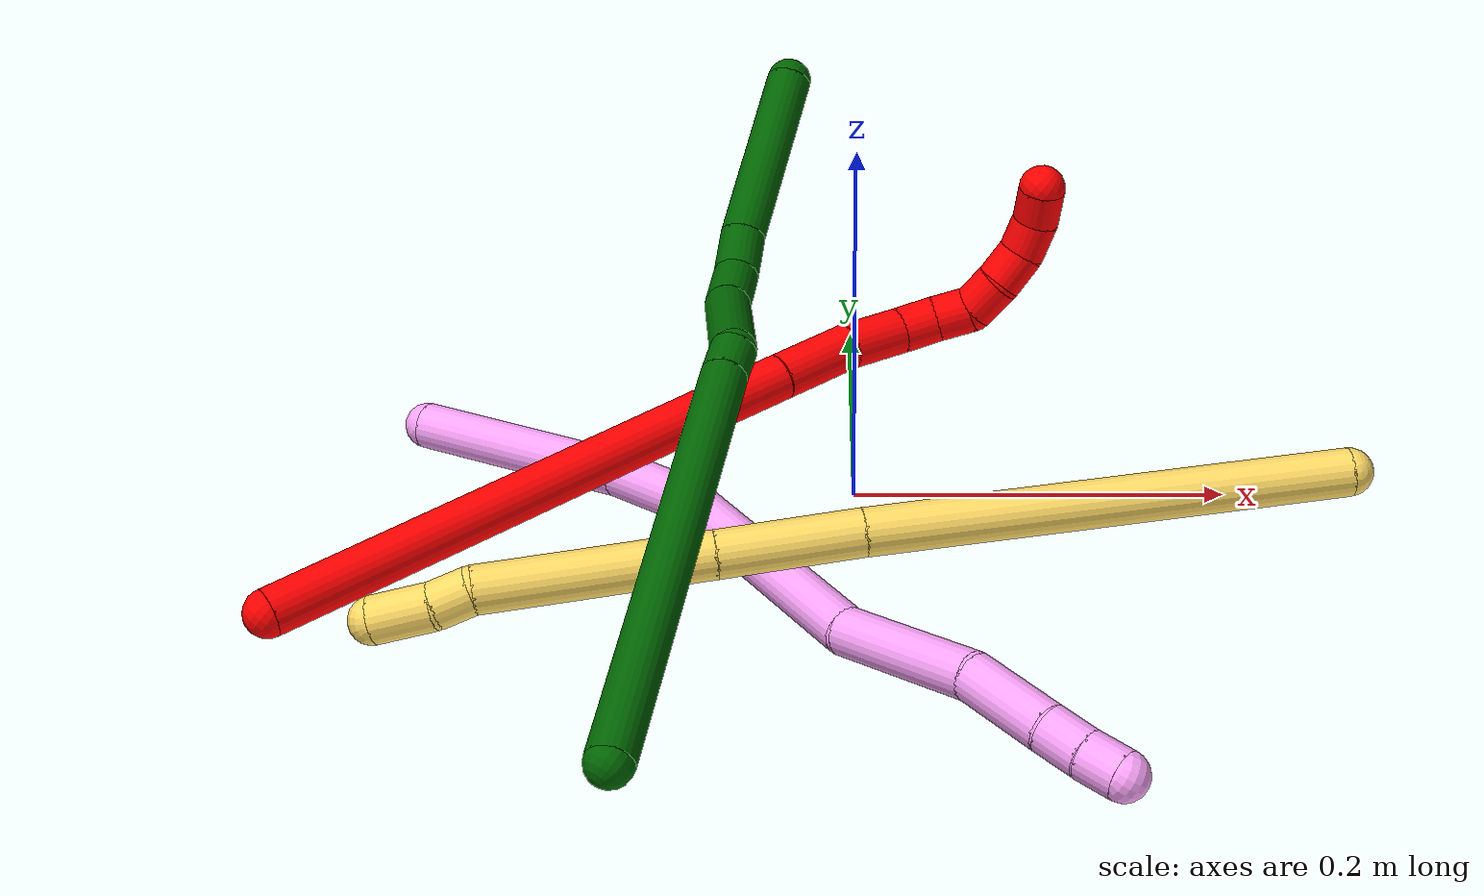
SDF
<sdf version="1.7">
 <world name="default">
  <model name="photoneo_s_sensor">
   <static>1</static>
   <pose>0 0 2 1.57079 1.57079 3.14159</pose>
   <link name="link">
    <inertial><mass>0.1</mass></inertial>
    <sensor name="sensor" type="depth">
     <update_rate>30</update_rate>
     <camera>
      <horizontal_fov>1.22</horizontal_fov>
      <image><width>1920</width><height>1200</height><format>B8G8R8</format></image>
      <clip><near>0.1</near><far>4</far></clip>
      <depth_camera><output>points</output></depth_camera>
     </camera>
     <plugin name="camera_plugin" filename="libgazebo_ros_depth_camera.so">
      <baseline>0.2</baseline>
      <alwaysOn>1</alwaysOn>
      <updateRate>0.0</updateRate>
      <cameraName>camera_ir</cameraName>
      <imageTopicName>/camera/color/image_raw</imageTopicName>
      <cameraInfoTopicName>/camera/color/camera_info</cameraInfoTopicName>
      <depthImageTopicName>/camera/depth/image_raw</depthImageTopicName>
      <depthImageCameraInfoTopicName>/camera/depth/camera_info</depthImageCameraInfoTopicName>
      <pointCloudTopicName>/camera/depth/points</pointCloudTopicName>
      <frameName>fr_optical</frameName>
      <pointCloudCutoff>0.1</pointCloudCutoff>
      <pointCloudCutoffMax>2.0</pointCloudCutoffMax>
      <distortionK1>0</distortionK1>
      <distortionK2>0</distortionK2>
      <distortionK3>0</distortionK3>
      <distortionT1>0</distortionT1>
      <distortionT2>0</distortionT2>
      <CxPrime>0</CxPrime>
      <Cx>0</Cx>
      <Cy>0</Cy>
      <focalLength>0</focalLength>
      <hackBaseline>0</hackBaseline>
     </plugin>
    </sensor>
   </link>
  </model>
  <model name="bin">
   <static>1</static>
   <link name="bottom">
    <collision name="collision-bottom">
     <pose>0 0 -0.01 0 -0 0</pose>
     <geometry><box><size>0.8 0.6 0.02</size></box></geometry>
     <surface>
      <friction><ode><mu>100</mu><mu2>100</mu2></ode></friction>
      <contact><collide_bitmask>65535</collide_bitmask></contact>
     </surface>
    </collision>
   </link>
   <link name="west_wall">
    <collision name="collision-west_wall">
     <pose>-0.41 0 0.1 0 -0 0</pose>
     <geometry><box><size>0.02 0.6 0.2</size></box></geometry>
     <surface>
      <friction><ode><mu>100</mu><mu2>100</mu2></ode></friction>
      <contact><collide_bitmask>65535</collide_bitmask></contact>
     </surface>
    </collision>
   </link>
   <link name="east_wall">
    <collision name="collision-east_wall">
     <pose>0.41 0 0.1 0 -0 0</pose>
     <geometry><box><size>0.02 0.6 0.2</size></box></geometry>
     <surface>
      <friction><ode><mu>100</mu><mu2>100</mu2></ode></friction>
      <contact><collide_bitmask>65535</collide_bitmask></contact>
     </surface>
    </collision>
   </link>
   <link name="south_wall">
    <collision name="collision-south_wall">
     <pose>0 -0.31 0.1 0 -0 0</pose>
     <geometry><box><size>0.8 0.02 0.2</size></box></geometry>
     <surface>
      <friction><ode><mu>100</mu><mu2>100</mu2></ode></friction>
      <contact><collide_bitmask>65535</collide_bitmask></contact>
     </surface>
    </collision>
   </link>
   <link name="north_wall">
    <collision name="collision-north_wall">
     <pose>0 0.31 0.1 0 -0 0</pose>
     <geometry><box><size>0.8 0.02 0.2</size></box></geometry>
     <surface>
      <friction><ode><mu>100</mu><mu2>100</mu2></ode></friction>
      <contact><collide_bitmask>65535</collide_bitmask></contact>
     </surface>
    </collision>
   </link>
  </model>
  <model name="2">
   <static>0</static>
   <link name="2">
    <collision name="collision-cylinder-e_1_1_4">
     <pose>0.089248 0.001063 0.08856 -0.012002 0.789234 -0.004999</pose>
     <geometry><cylinder><radius>0.0125</radius><length>0.251469</length></cylinder></geometry>
     <surface>
      <friction><ode><mu>1.16</mu><mu2>1.16</mu2><slip1>0</slip1><slip2>0</slip2></ode></friction>
      <contact><ode><kp>1e+06</kp><kd>1</kd><max_vel>0</max_vel><min_depth>0.001</min_depth></ode></contact>
     </surface>
    </collision>
    <visual name="visual-cylinder-e_1_1_4">
     <pose>0.089248 0.001063 0.08856 -0.012002 0.789234 -0.004999</pose>
     <geometry><cylinder><radius>0.0125</radius><length>0.251469</length></cylinder></geometry>
     <material><ambient>1 0 0 1</ambient></material>
    </visual>
    <collision name="collision-cylinder-e_2_4_5">
     <pose>0.195399 0.002199 0.193785 -0.004354 0.792471 -0.001822</pose>
     <geometry><cylinder><radius>0.0125</radius><length>0.047474</length></cylinder></geometry>
     <surface>
      <friction><ode><mu>1.16</mu><mu2>1.16</mu2><slip1>0</slip1><slip2>0</slip2></ode></friction>
      <contact><ode><kp>1e+06</kp><kd>1</kd><max_vel>0</max_vel><min_depth>0.001</min_depth></ode></contact>
     </surface>
    </collision>
    <visual name="visual-cylinder-e_2_4_5">
     <pose>0.195399 0.002199 0.193785 -0.004354 0.792471 -0.001822</pose>
     <geometry><cylinder><radius>0.0125</radius><length>0.047474</length></cylinder></geometry>
     <material><ambient>1 0 0 1</ambient></material>
    </visual>
    <collision name="collision-cylinder-e_3_5_6">
     <pose>0.228975 0.002977 0.225557 -0.046688 0.834079 -0.020687</pose>
     <geometry><cylinder><radius>0.0125</radius><length>0.045021</length></cylinder></geometry>
     <surface>
      <friction><ode><mu>1.16</mu><mu2>1.16</mu2><slip1>0</slip1><slip2>0</slip2></ode></friction>
      <contact><ode><kp>1e+06</kp><kd>1</kd><max_vel>0</max_vel><min_depth>0.001</min_depth></ode></contact>
     </surface>
    </collision>
    <visual name="visual-cylinder-e_3_5_6">
     <pose>0.228975 0.002977 0.225557 -0.046688 0.834079 -0.020687</pose>
     <geometry><cylinder><radius>0.0125</radius><length>0.045021</length></cylinder></geometry>
     <material><ambient>1 0 0 1</ambient></material>
    </visual>
    <collision name="collision-cylinder-e_4_6_7">
     <pose>0.25796 0.002283 0.251131 0.132955 0.861867 0.061197</pose>
     <geometry><cylinder><radius>0.0125</radius><length>0.032441</length></cylinder></geometry>
     <surface>
      <friction><ode><mu>1.16</mu><mu2>1.16</mu2><slip1>0</slip1><slip2>0</slip2></ode></friction>
      <contact><ode><kp>1e+06</kp><kd>1</kd><max_vel>0</max_vel><min_depth>0.001</min_depth></ode></contact>
     </surface>
    </collision>
    <visual name="visual-cylinder-e_4_6_7">
     <pose>0.25796 0.002283 0.251131 0.132955 0.861867 0.061197</pose>
     <geometry><cylinder><radius>0.0125</radius><length>0.032441</length></cylinder></geometry>
     <material><ambient>1 0 0 1</ambient></material>
    </visual>
    <collision name="collision-cylinder-e_5_7_8">
     <pose>0.276851 -0.001586 0.270051 0.284239 0.641591 0.095014</pose>
     <geometry><cylinder><radius>0.0125</radius><length>0.021984</length></cylinder></geometry>
     <surface>
      <friction><ode><mu>1.16</mu><mu2>1.16</mu2><slip1>0</slip1><slip2>0</slip2></ode></friction>
      <contact><ode><kp>1e+06</kp><kd>1</kd><max_vel>0</max_vel><min_depth>0.001</min_depth></ode></contact>
     </surface>
    </collision>
    <visual name="visual-cylinder-e_5_7_8">
     <pose>0.276851 -0.001586 0.270051 0.284239 0.641591 0.095014</pose>
     <geometry><cylinder><radius>0.0125</radius><length>0.021984</length></cylinder></geometry>
     <material><ambient>1 0 0 1</ambient></material>
    </visual>
    <collision name="collision-cylinder-e_6_8_9">
     <pose>0.28601 -0.009023 0.287214 0.518264 0.251939 0.067117</pose>
     <geometry><cylinder><radius>0.0125</radius><length>0.020709</length></cylinder></geometry>
     <surface>
      <friction><ode><mu>1.16</mu><mu2>1.16</mu2><slip1>0</slip1><slip2>0</slip2></ode></friction>
      <contact><ode><kp>1e+06</kp><kd>1</kd><max_vel>0</max_vel><min_depth>0.001</min_depth></ode></contact>
     </surface>
    </collision>
    <visual name="visual-cylinder-e_6_8_9">
     <pose>0.28601 -0.009023 0.287214 0.518264 0.251939 0.067117</pose>
     <geometry><cylinder><radius>0.0125</radius><length>0.020709</length></cylinder></geometry>
     <material><ambient>1 0 0 1</ambient></material>
    </visual>
    <collision name="collision-cylinder-e_7_9_10">
     <pose>0.28841 -0.014799 0.306165 0.078742 -0.017656 -0.000696</pose>
     <geometry><cylinder><radius>0.0125</radius><length>0.020546</length></cylinder></geometry>
     <surface>
      <friction><ode><mu>1.16</mu><mu2>1.16</mu2><slip1>0</slip1><slip2>0</slip2></ode></friction>
      <contact><ode><kp>1e+06</kp><kd>1</kd><max_vel>0</max_vel><min_depth>0.001</min_depth></ode></contact>
     </surface>
    </collision>
    <visual name="visual-cylinder-e_7_9_10">
     <pose>0.28841 -0.014799 0.306165 0.078742 -0.017656 -0.000696</pose>
     <geometry><cylinder><radius>0.0125</radius><length>0.020546</length></cylinder></geometry>
     <material><ambient>1 0 0 1</ambient></material>
    </visual>
    <collision name="collision-cylinder-e_8_10_11">
     <pose>0.288994 -0.014454 0.326464 -0.11409 0.075414 -0.004309</pose>
     <geometry><cylinder><radius>0.0125</radius><length>0.020308</length></cylinder></geometry>
     <surface>
      <friction><ode><mu>1.16</mu><mu2>1.16</mu2><slip1>0</slip1><slip2>0</slip2></ode></friction>
      <contact><ode><kp>1e+06</kp><kd>1</kd><max_vel>0</max_vel><min_depth>0.001</min_depth></ode></contact>
     </surface>
    </collision>
    <visual name="visual-cylinder-e_8_10_11">
     <pose>0.288994 -0.014454 0.326464 -0.11409 0.075414 -0.004309</pose>
     <geometry><cylinder><radius>0.0125</radius><length>0.020308</length></cylinder></geometry>
     <material><ambient>1 0 0 1</ambient></material>
    </visual>
    <collision name="collision-cylinder-e_9_11_12">
     <pose>0.287087 -0.01154 0.346009 -0.18362 -0.270192 0.025027</pose>
     <geometry><cylinder><radius>0.0125</radius><length>0.020023</length></cylinder></geometry>
     <surface>
      <friction><ode><mu>1.16</mu><mu2>1.16</mu2><slip1>0</slip1><slip2>0</slip2></ode></friction>
      <contact><ode><kp>1e+06</kp><kd>1</kd><max_vel>0</max_vel><min_depth>0.001</min_depth></ode></contact>
     </surface>
    </collision>
    <visual name="visual-cylinder-e_9_11_12">
     <pose>0.287087 -0.01154 0.346009 -0.18362 -0.270192 0.025027</pose>
     <geometry><cylinder><radius>0.0125</radius><length>0.020023</length></cylinder></geometry>
     <material><ambient>1 0 0 1</ambient></material>
    </visual>
    <collision name="collision-cylinder-e_10_12_2">
     <pose>0.278766 -0.008208 0.363612 -0.191108 -0.599366 0.059213</pose>
     <geometry><cylinder><radius>0.0125</radius><length>0.020025</length></cylinder></geometry>
     <surface>
      <friction><ode><mu>1.16</mu><mu2>1.16</mu2><slip1>0</slip1><slip2>0</slip2></ode></friction>
      <contact><ode><kp>1e+06</kp><kd>1</kd><max_vel>0</max_vel><min_depth>0.001</min_depth></ode></contact>
     </surface>
    </collision>
    <visual name="visual-cylinder-e_10_12_2">
     <pose>0.278766 -0.008208 0.363612 -0.191108 -0.599366 0.059213</pose>
     <geometry><cylinder><radius>0.0125</radius><length>0.020025</length></cylinder></geometry>
     <material><ambient>1 0 0 1</ambient></material>
    </visual>
    <collision name="collision-sphere-2">
     <pose>0.273118 -0.006637 0.371729 0 -0 0</pose>
     <geometry><sphere><radius>0.0125</radius></sphere></geometry>
     <surface>
      <friction><ode><mu>1.16</mu><mu2>1.16</mu2><slip1>0</slip1><slip2>0</slip2></ode></friction>
      <contact><ode><kp>1e+06</kp><kd>1</kd><max_vel>0</max_vel><min_depth>0.001</min_depth></ode></contact>
     </surface>
    </collision>
    <visual name="visual-sphere-2">
     <pose>0.273118 -0.006637 0.371729 0 -0 0</pose>
     <geometry><sphere><radius>0.0125</radius></sphere></geometry>
     <material><ambient>1 0 0 1</ambient></material>
    </visual>
    <collision name="collision-sphere-12">
     <pose>0.284414 -0.009778 0.355495 0 -0 0</pose>
     <geometry><sphere><radius>0.0125</radius></sphere></geometry>
     <surface>
      <friction><ode><mu>1.16</mu><mu2>1.16</mu2><slip1>0</slip1><slip2>0</slip2></ode></friction>
      <contact><ode><kp>1e+06</kp><kd>1</kd><max_vel>0</max_vel><min_depth>0.001</min_depth></ode></contact>
     </surface>
    </collision>
    <visual name="visual-sphere-12">
     <pose>0.284414 -0.009778 0.355495 0 -0 0</pose>
     <geometry><sphere><radius>0.0125</radius></sphere></geometry>
     <material><ambient>1 0 0 1</ambient></material>
    </visual>
    <collision name="collision-sphere-11">
     <pose>0.289759 -0.013301 0.336523 0 -0 0</pose>
     <geometry><sphere><radius>0.0125</radius></sphere></geometry>
     <surface>
      <friction><ode><mu>1.16</mu><mu2>1.16</mu2><slip1>0</slip1><slip2>0</slip2></ode></friction>
      <contact><ode><kp>1e+06</kp><kd>1</kd><max_vel>0</max_vel><min_depth>0.001</min_depth></ode></contact>
     </surface>
    </collision>
    <visual name="visual-sphere-11">
     <pose>0.289759 -0.013301 0.336523 0 -0 0</pose>
     <geometry><sphere><radius>0.0125</radius></sphere></geometry>
     <material><ambient>1 0 0 1</ambient></material>
    </visual>
    <collision name="collision-sphere-10">
     <pose>0.288229 -0.015607 0.316404 0 -0 0</pose>
     <geometry><sphere><radius>0.0125</radius></sphere></geometry>
     <surface>
      <friction><ode><mu>1.16</mu><mu2>1.16</mu2><slip1>0</slip1><slip2>0</slip2></ode></friction>
      <contact><ode><kp>1e+06</kp><kd>1</kd><max_vel>0</max_vel><min_depth>0.001</min_depth></ode></contact>
     </surface>
    </collision>
    <visual name="visual-sphere-10">
     <pose>0.288229 -0.015607 0.316404 0 -0 0</pose>
     <geometry><sphere><radius>0.0125</radius></sphere></geometry>
     <material><ambient>1 0 0 1</ambient></material>
    </visual>
    <collision name="collision-sphere-9">
     <pose>0.288591 -0.013991 0.295925 0 -0 0</pose>
     <geometry><sphere><radius>0.0125</radius></sphere></geometry>
     <surface>
      <friction><ode><mu>1.16</mu><mu2>1.16</mu2><slip1>0</slip1><slip2>0</slip2></ode></friction>
      <contact><ode><kp>1e+06</kp><kd>1</kd><max_vel>0</max_vel><min_depth>0.001</min_depth></ode></contact>
     </surface>
    </collision>
    <visual name="visual-sphere-9">
     <pose>0.288591 -0.013991 0.295925 0 -0 0</pose>
     <geometry><sphere><radius>0.0125</radius></sphere></geometry>
     <material><ambient>1 0 0 1</ambient></material>
    </visual>
    <collision name="collision-sphere-4">
     <pose>0.178496 0.002126 0.177119 0 -0 0</pose>
     <geometry><sphere><radius>0.0125</radius></sphere></geometry>
     <surface>
      <friction><ode><mu>1.16</mu><mu2>1.16</mu2><slip1>0</slip1><slip2>0</slip2></ode></friction>
      <contact><ode><kp>1e+06</kp><kd>1</kd><max_vel>0</max_vel><min_depth>0.001</min_depth></ode></contact>
     </surface>
    </collision>
    <visual name="visual-sphere-4">
     <pose>0.178496 0.002126 0.177119 0 -0 0</pose>
     <geometry><sphere><radius>0.0125</radius></sphere></geometry>
     <material><ambient>1 0 0 1</ambient></material>
    </visual>
    <collision name="collision-sphere-1">
     <geometry><sphere><radius>0.0125</radius></sphere></geometry>
     <surface>
      <friction><ode><mu>1.16</mu><mu2>1.16</mu2><slip1>0</slip1><slip2>0</slip2></ode></friction>
      <contact><ode><kp>1e+06</kp><kd>1</kd><max_vel>0</max_vel><min_depth>0.001</min_depth></ode></contact>
     </surface>
    </collision>
    <visual name="visual-sphere-1">
     <geometry><sphere><radius>0.0125</radius></sphere></geometry>
     <material><ambient>1 0 0 1</ambient></material>
    </visual>
    <collision name="collision-sphere-8">
     <pose>0.283429 -0.004056 0.278503 0 -0 0</pose>
     <geometry><sphere><radius>0.0125</radius></sphere></geometry>
     <surface>
      <friction><ode><mu>1.16</mu><mu2>1.16</mu2><slip1>0</slip1><slip2>0</slip2></ode></friction>
      <contact><ode><kp>1e+06</kp><kd>1</kd><max_vel>0</max_vel><min_depth>0.001</min_depth></ode></contact>
     </surface>
    </collision>
    <visual name="visual-sphere-8">
     <pose>0.283429 -0.004056 0.278503 0 -0 0</pose>
     <geometry><sphere><radius>0.0125</radius></sphere></geometry>
     <material><ambient>1 0 0 1</ambient></material>
    </visual>
    <collision name="collision-sphere-5">
     <pose>0.212302 0.002271 0.21045 0 -0 0</pose>
     <geometry><sphere><radius>0.0125</radius></sphere></geometry>
     <surface>
      <friction><ode><mu>1.16</mu><mu2>1.16</mu2><slip1>0</slip1><slip2>0</slip2></ode></friction>
      <contact><ode><kp>1e+06</kp><kd>1</kd><max_vel>0</max_vel><min_depth>0.001</min_depth></ode></contact>
     </surface>
    </collision>
    <visual name="visual-sphere-5">
     <pose>0.212302 0.002271 0.21045 0 -0 0</pose>
     <geometry><sphere><radius>0.0125</radius></sphere></geometry>
     <material><ambient>1 0 0 1</ambient></material>
    </visual>
    <collision name="collision-sphere-6">
     <pose>0.245648 0.003683 0.240664 0 -0 0</pose>
     <geometry><sphere><radius>0.0125</radius></sphere></geometry>
     <surface>
      <friction><ode><mu>1.16</mu><mu2>1.16</mu2><slip1>0</slip1><slip2>0</slip2></ode></friction>
      <contact><ode><kp>1e+06</kp><kd>1</kd><max_vel>0</max_vel><min_depth>0.001</min_depth></ode></contact>
     </surface>
    </collision>
    <visual name="visual-sphere-6">
     <pose>0.245648 0.003683 0.240664 0 -0 0</pose>
     <geometry><sphere><radius>0.0125</radius></sphere></geometry>
     <material><ambient>1 0 0 1</ambient></material>
    </visual>
    <collision name="collision-sphere-7">
     <pose>0.270272 0.000883 0.261598 0 -0 0</pose>
     <geometry><sphere><radius>0.0125</radius></sphere></geometry>
     <surface>
      <friction><ode><mu>1.16</mu><mu2>1.16</mu2><slip1>0</slip1><slip2>0</slip2></ode></friction>
      <contact><ode><kp>1e+06</kp><kd>1</kd><max_vel>0</max_vel><min_depth>0.001</min_depth></ode></contact>
     </surface>
    </collision>
    <visual name="visual-sphere-7">
     <pose>0.270272 0.000883 0.261598 0 -0 0</pose>
     <geometry><sphere><radius>0.0125</radius></sphere></geometry>
     <material><ambient>1 0 0 1</ambient></material>
    </visual>
    <inertial>
     <pose>0.171062 -0.00127 0.177572 0 -0 0</pose>
     <mass>0.5</mass>
     <inertia>
      <ixx>0.000982</ixx>
      <ixy>0</ixy>
      <ixz>0</ixz>
      <iyy>0.001363</iyy>
      <iyz>0</iyz>
      <izz>-0.000947</izz>
     </inertia>
    </inertial>
   </link>
   <pose>-0.285719 -0.163369 0.026851 0.4256 0.579967 0.879985</pose>
  </model>
  <model name="4">
   <static>0</static>
   <link name="4">
    <collision name="collision-cylinder-e_1_1_4">
     <pose>0.036072 -0.025565 -0.044238 2.61758 0.614732 1.73861</pose>
     <geometry><cylinder><radius>0.0125</radius><length>0.125088</length></cylinder></geometry>
     <surface>
      <friction><ode><mu>1.16</mu><mu2>1.16</mu2><slip1>0</slip1><slip2>0</slip2></ode></friction>
      <contact><ode><kp>1e+06</kp><kd>1</kd><max_vel>0</max_vel><min_depth>0.001</min_depth></ode></contact>
     </surface>
    </collision>
    <visual name="visual-cylinder-e_1_1_4">
     <pose>0.036072 -0.025565 -0.044238 2.61758 0.614732 1.73861</pose>
     <geometry><cylinder><radius>0.0125</radius><length>0.125088</length></cylinder></geometry>
     <material><ambient>1 0.65098 0.996078 1</ambient></material>
    </visual>
    <collision name="collision-cylinder-e_2_4_5">
     <pose>0.08828 -0.068368 -0.102507 2.25404 0.628008 1.19858</pose>
     <geometry><cylinder><radius>0.0125</radius><length>0.054932</length></cylinder></geometry>
     <surface>
      <friction><ode><mu>1.16</mu><mu2>1.16</mu2><slip1>0</slip1><slip2>0</slip2></ode></friction>
      <contact><ode><kp>1e+06</kp><kd>1</kd><max_vel>0</max_vel><min_depth>0.001</min_depth></ode></contact>
     </surface>
    </collision>
    <visual name="visual-cylinder-e_2_4_5">
     <pose>0.08828 -0.068368 -0.102507 2.25404 0.628008 1.19858</pose>
     <geometry><cylinder><radius>0.0125</radius><length>0.054932</length></cylinder></geometry>
     <material><ambient>1 0.65098 0.996078 1</ambient></material>
    </visual>
    <collision name="collision-cylinder-e_3_5_6">
     <pose>0.136467 -0.143999 -0.14737 2.05659 0.451856 0.728538</pose>
     <geometry><cylinder><radius>0.0125</radius><length>0.146803</length></cylinder></geometry>
     <surface>
      <friction><ode><mu>1.16</mu><mu2>1.16</mu2><slip1>0</slip1><slip2>0</slip2></ode></friction>
      <contact><ode><kp>1e+06</kp><kd>1</kd><max_vel>0</max_vel><min_depth>0.001</min_depth></ode></contact>
     </surface>
    </collision>
    <visual name="visual-cylinder-e_3_5_6">
     <pose>0.136467 -0.143999 -0.14737 2.05659 0.451856 0.728538</pose>
     <geometry><cylinder><radius>0.0125</radius><length>0.146803</length></cylinder></geometry>
     <material><ambient>1 0.65098 0.996078 1</ambient></material>
    </visual>
    <collision name="collision-cylinder-e_4_6_7">
     <pose>0.193847 -0.227408 -0.197733 2.23369 0.673619 1.24491</pose>
     <geometry><cylinder><radius>0.0125</radius><length>0.081209</length></cylinder></geometry>
     <surface>
      <friction><ode><mu>1.16</mu><mu2>1.16</mu2><slip1>0</slip1><slip2>0</slip2></ode></friction>
      <contact><ode><kp>1e+06</kp><kd>1</kd><max_vel>0</max_vel><min_depth>0.001</min_depth></ode></contact>
     </surface>
    </collision>
    <visual name="visual-cylinder-e_4_6_7">
     <pose>0.193847 -0.227408 -0.197733 2.23369 0.673619 1.24491</pose>
     <geometry><cylinder><radius>0.0125</radius><length>0.081209</length></cylinder></geometry>
     <material><ambient>1 0.65098 0.996078 1</ambient></material>
    </visual>
    <collision name="collision-cylinder-e_5_7_8">
     <pose>0.229845 -0.270214 -0.230638 2.21542 0.446942 0.854293</pose>
     <geometry><cylinder><radius>0.0125</radius><length>0.049366</length></cylinder></geometry>
     <surface>
      <friction><ode><mu>1.16</mu><mu2>1.16</mu2><slip1>0</slip1><slip2>0</slip2></ode></friction>
      <contact><ode><kp>1e+06</kp><kd>1</kd><max_vel>0</max_vel><min_depth>0.001</min_depth></ode></contact>
     </surface>
    </collision>
    <visual name="visual-cylinder-e_5_7_8">
     <pose>0.229845 -0.270214 -0.230638 2.21542 0.446942 0.854293</pose>
     <geometry><cylinder><radius>0.0125</radius><length>0.049366</length></cylinder></geometry>
     <material><ambient>1 0.65098 0.996078 1</ambient></material>
    </visual>
    <collision name="collision-cylinder-e_6_8_9">
     <pose>0.244892 -0.295375 -0.25123 2.34578 0.401437 0.901613</pose>
     <geometry><cylinder><radius>0.0125</radius><length>0.022412</length></cylinder></geometry>
     <surface>
      <friction><ode><mu>1.16</mu><mu2>1.16</mu2><slip1>0</slip1><slip2>0</slip2></ode></friction>
      <contact><ode><kp>1e+06</kp><kd>1</kd><max_vel>0</max_vel><min_depth>0.001</min_depth></ode></contact>
     </surface>
    </collision>
    <visual name="visual-cylinder-e_6_8_9">
     <pose>0.244892 -0.295375 -0.25123 2.34578 0.401437 0.901613</pose>
     <geometry><cylinder><radius>0.0125</radius><length>0.022412</length></cylinder></geometry>
     <material><ambient>1 0.65098 0.996078 1</ambient></material>
    </visual>
    <collision name="collision-cylinder-e_7_9_2">
     <pose>0.253591 -0.30878 -0.26529 2.41876 0.442212 1.07291</pose>
     <geometry><cylinder><radius>0.0125</radius><length>0.02019</length></cylinder></geometry>
     <surface>
      <friction><ode><mu>1.16</mu><mu2>1.16</mu2><slip1>0</slip1><slip2>0</slip2></ode></friction>
      <contact><ode><kp>1e+06</kp><kd>1</kd><max_vel>0</max_vel><min_depth>0.001</min_depth></ode></contact>
     </surface>
    </collision>
    <visual name="visual-cylinder-e_7_9_2">
     <pose>0.253591 -0.30878 -0.26529 2.41876 0.442212 1.07291</pose>
     <geometry><cylinder><radius>0.0125</radius><length>0.02019</length></cylinder></geometry>
     <material><ambient>1 0.65098 0.996078 1</ambient></material>
    </visual>
    <collision name="collision-sphere-2">
     <pose>0.257911 -0.314816 -0.272133 0 -0 0</pose>
     <geometry><sphere><radius>0.0125</radius></sphere></geometry>
     <surface>
      <friction><ode><mu>1.16</mu><mu2>1.16</mu2><slip1>0</slip1><slip2>0</slip2></ode></friction>
      <contact><ode><kp>1e+06</kp><kd>1</kd><max_vel>0</max_vel><min_depth>0.001</min_depth></ode></contact>
     </surface>
    </collision>
    <visual name="visual-sphere-2">
     <pose>0.257911 -0.314816 -0.272133 0 -0 0</pose>
     <geometry><sphere><radius>0.0125</radius></sphere></geometry>
     <material><ambient>1 0.65098 0.996078 1</ambient></material>
    </visual>
    <collision name="collision-sphere-9">
     <pose>0.24927 -0.302744 -0.258448 0 -0 0</pose>
     <geometry><sphere><radius>0.0125</radius></sphere></geometry>
     <surface>
      <friction><ode><mu>1.16</mu><mu2>1.16</mu2><slip1>0</slip1><slip2>0</slip2></ode></friction>
      <contact><ode><kp>1e+06</kp><kd>1</kd><max_vel>0</max_vel><min_depth>0.001</min_depth></ode></contact>
     </surface>
    </collision>
    <visual name="visual-sphere-9">
     <pose>0.24927 -0.302744 -0.258448 0 -0 0</pose>
     <geometry><sphere><radius>0.0125</radius></sphere></geometry>
     <material><ambient>1 0.65098 0.996078 1</ambient></material>
    </visual>
    <collision name="collision-sphere-4">
     <pose>0.072143 -0.051131 -0.088476 0 -0 0</pose>
     <geometry><sphere><radius>0.0125</radius></sphere></geometry>
     <surface>
      <friction><ode><mu>1.16</mu><mu2>1.16</mu2><slip1>0</slip1><slip2>0</slip2></ode></friction>
      <contact><ode><kp>1e+06</kp><kd>1</kd><max_vel>0</max_vel><min_depth>0.001</min_depth></ode></contact>
     </surface>
    </collision>
    <visual name="visual-sphere-4">
     <pose>0.072143 -0.051131 -0.088476 0 -0 0</pose>
     <geometry><sphere><radius>0.0125</radius></sphere></geometry>
     <material><ambient>1 0.65098 0.996078 1</ambient></material>
    </visual>
    <collision name="collision-sphere-1">
     <geometry><sphere><radius>0.0125</radius></sphere></geometry>
     <surface>
      <friction><ode><mu>1.16</mu><mu2>1.16</mu2><slip1>0</slip1><slip2>0</slip2></ode></friction>
      <contact><ode><kp>1e+06</kp><kd>1</kd><max_vel>0</max_vel><min_depth>0.001</min_depth></ode></contact>
     </surface>
    </collision>
    <visual name="visual-sphere-1">
     <geometry><sphere><radius>0.0125</radius></sphere></geometry>
     <material><ambient>1 0.65098 0.996078 1</ambient></material>
    </visual>
    <collision name="collision-sphere-8">
     <pose>0.240513 -0.288005 -0.244012 0 -0 0</pose>
     <geometry><sphere><radius>0.0125</radius></sphere></geometry>
     <surface>
      <friction><ode><mu>1.16</mu><mu2>1.16</mu2><slip1>0</slip1><slip2>0</slip2></ode></friction>
      <contact><ode><kp>1e+06</kp><kd>1</kd><max_vel>0</max_vel><min_depth>0.001</min_depth></ode></contact>
     </surface>
    </collision>
    <visual name="visual-sphere-8">
     <pose>0.240513 -0.288005 -0.244012 0 -0 0</pose>
     <geometry><sphere><radius>0.0125</radius></sphere></geometry>
     <material><ambient>1 0.65098 0.996078 1</ambient></material>
    </visual>
    <collision name="collision-sphere-5">
     <pose>0.104418 -0.085604 -0.116538 0 -0 0</pose>
     <geometry><sphere><radius>0.0125</radius></sphere></geometry>
     <surface>
      <friction><ode><mu>1.16</mu><mu2>1.16</mu2><slip1>0</slip1><slip2>0</slip2></ode></friction>
      <contact><ode><kp>1e+06</kp><kd>1</kd><max_vel>0</max_vel><min_depth>0.001</min_depth></ode></contact>
     </surface>
    </collision>
    <visual name="visual-sphere-5">
     <pose>0.104418 -0.085604 -0.116538 0 -0 0</pose>
     <geometry><sphere><radius>0.0125</radius></sphere></geometry>
     <material><ambient>1 0.65098 0.996078 1</ambient></material>
    </visual>
    <collision name="collision-sphere-6">
     <pose>0.168517 -0.202394 -0.178203 0 -0 0</pose>
     <geometry><sphere><radius>0.0125</radius></sphere></geometry>
     <surface>
      <friction><ode><mu>1.16</mu><mu2>1.16</mu2><slip1>0</slip1><slip2>0</slip2></ode></friction>
      <contact><ode><kp>1e+06</kp><kd>1</kd><max_vel>0</max_vel><min_depth>0.001</min_depth></ode></contact>
     </surface>
    </collision>
    <visual name="visual-sphere-6">
     <pose>0.168517 -0.202394 -0.178203 0 -0 0</pose>
     <geometry><sphere><radius>0.0125</radius></sphere></geometry>
     <material><ambient>1 0.65098 0.996078 1</ambient></material>
    </visual>
    <collision name="collision-sphere-7">
     <pose>0.219177 -0.252422 -0.217263 0 -0 0</pose>
     <geometry><sphere><radius>0.0125</radius></sphere></geometry>
     <surface>
      <friction><ode><mu>1.16</mu><mu2>1.16</mu2><slip1>0</slip1><slip2>0</slip2></ode></friction>
      <contact><ode><kp>1e+06</kp><kd>1</kd><max_vel>0</max_vel><min_depth>0.001</min_depth></ode></contact>
     </surface>
    </collision>
    <visual name="visual-sphere-7">
     <pose>0.219177 -0.252422 -0.217263 0 -0 0</pose>
     <geometry><sphere><radius>0.0125</radius></sphere></geometry>
     <material><ambient>1 0.65098 0.996078 1</ambient></material>
    </visual>
    <inertial>
     <pose>0.134185 -0.145508 -0.142458 0 -0 0</pose>
     <mass>0.5</mass>
     <inertia>
      <ixx>0.000558</ixx>
      <ixy>0</ixy>
      <ixz>0</ixz>
      <iyy>0.000391</iyy>
      <iyz>0</iyz>
      <izz>5.2e-05</izz>
     </inertia>
    </inertial>
   </link>
   <pose>-0.238866 0.059422 0.012143 0.335989 -0.948621 -0.320287</pose>
  </model>
  <model name="5">
   <static>0</static>
   <link name="5">
    <collision name="collision-cylinder-e_1_1_4">
     <pose>-0.114373 0.0446 -0.028055 -2.1323 -1.13909 1.71806</pose>
     <geometry><cylinder><radius>0.0125</radius><length>0.251852</length></cylinder></geometry>
     <surface>
      <friction><ode><mu>1.16</mu><mu2>1.16</mu2><slip1>0</slip1><slip2>0</slip2></ode></friction>
      <contact><ode><kp>1e+06</kp><kd>1</kd><max_vel>0</max_vel><min_depth>0.001</min_depth></ode></contact>
     </surface>
    </collision>
    <visual name="visual-cylinder-e_1_1_4">
     <pose>-0.114373 0.0446 -0.028055 -2.1323 -1.13909 1.71806</pose>
     <geometry><cylinder><radius>0.0125</radius><length>0.251852</length></cylinder></geometry>
     <material><ambient>1 0.858824 0.4 1</ambient></material>
    </visual>
    <collision name="collision-cylinder-e_2_4_5">
     <pose>-0.26335 0.101712 -0.064064 -2.13703 -1.16598 1.75261</pose>
     <geometry><cylinder><radius>0.0125</radius><length>0.075293</length></cylinder></geometry>
     <surface>
      <friction><ode><mu>1.16</mu><mu2>1.16</mu2><slip1>0</slip1><slip2>0</slip2></ode></friction>
      <contact><ode><kp>1e+06</kp><kd>1</kd><max_vel>0</max_vel><min_depth>0.001</min_depth></ode></contact>
     </surface>
    </collision>
    <visual name="visual-cylinder-e_2_4_5">
     <pose>-0.26335 0.101712 -0.064064 -2.13703 -1.16598 1.75261</pose>
     <geometry><cylinder><radius>0.0125</radius><length>0.075293</length></cylinder></geometry>
     <material><ambient>1 0.858824 0.4 1</ambient></material>
    </visual>
    <collision name="collision-cylinder-e_3_5_6">
     <pose>-0.353218 0.13439 -0.085404 -2.15683 -1.15799 1.76725</pose>
     <geometry><cylinder><radius>0.0125</radius><length>0.120663</length></cylinder></geometry>
     <surface>
      <friction><ode><mu>1.16</mu><mu2>1.16</mu2><slip1>0</slip1><slip2>0</slip2></ode></friction>
      <contact><ode><kp>1e+06</kp><kd>1</kd><max_vel>0</max_vel><min_depth>0.001</min_depth></ode></contact>
     </surface>
    </collision>
    <visual name="visual-cylinder-e_3_5_6">
     <pose>-0.353218 0.13439 -0.085404 -2.15683 -1.15799 1.76725</pose>
     <geometry><cylinder><radius>0.0125</radius><length>0.120663</length></cylinder></geometry>
     <material><ambient>1 0.858824 0.4 1</ambient></material>
    </visual>
    <collision name="collision-cylinder-e_4_6_7">
     <pose>-0.417875 0.155215 -0.102233 -2.95223 -1.21366 2.86969</pose>
     <geometry><cylinder><radius>0.0125</radius><length>0.020054</length></cylinder></geometry>
     <surface>
      <friction><ode><mu>1.16</mu><mu2>1.16</mu2><slip1>0</slip1><slip2>0</slip2></ode></friction>
      <contact><ode><kp>1e+06</kp><kd>1</kd><max_vel>0</max_vel><min_depth>0.001</min_depth></ode></contact>
     </surface>
    </collision>
    <visual name="visual-cylinder-e_4_6_7">
     <pose>-0.417875 0.155215 -0.102233 -2.95223 -1.21366 2.86969</pose>
     <geometry><cylinder><radius>0.0125</radius><length>0.020054</length></cylinder></geometry>
     <material><ambient>1 0.858824 0.4 1</ambient></material>
    </visual>
    <collision name="collision-cylinder-e_5_7_2">
     <pose>-0.441232 0.159254 -0.112875 -2.70273 -1.05304 2.40886</pose>
     <geometry><cylinder><radius>0.0125</radius><length>0.032138</length></cylinder></geometry>
     <surface>
      <friction><ode><mu>1.16</mu><mu2>1.16</mu2><slip1>0</slip1><slip2>0</slip2></ode></friction>
      <contact><ode><kp>1e+06</kp><kd>1</kd><max_vel>0</max_vel><min_depth>0.001</min_depth></ode></contact>
     </surface>
    </collision>
    <visual name="visual-cylinder-e_5_7_2">
     <pose>-0.441232 0.159254 -0.112875 -2.70273 -1.05304 2.40886</pose>
     <geometry><cylinder><radius>0.0125</radius><length>0.032138</length></cylinder></geometry>
     <material><ambient>1 0.858824 0.4 1</ambient></material>
    </visual>
    <collision name="collision-sphere-2">
     <pose>-0.455195 0.162634 -0.120074 0 -0 0</pose>
     <geometry><sphere><radius>0.0125</radius></sphere></geometry>
     <surface>
      <friction><ode><mu>1.16</mu><mu2>1.16</mu2><slip1>0</slip1><slip2>0</slip2></ode></friction>
      <contact><ode><kp>1e+06</kp><kd>1</kd><max_vel>0</max_vel><min_depth>0.001</min_depth></ode></contact>
     </surface>
    </collision>
    <visual name="visual-sphere-2">
     <pose>-0.455195 0.162634 -0.120074 0 -0 0</pose>
     <geometry><sphere><radius>0.0125</radius></sphere></geometry>
     <material><ambient>1 0.858824 0.4 1</ambient></material>
    </visual>
    <collision name="collision-sphere-7">
     <pose>-0.42727 0.155875 -0.105676 0 -0 0</pose>
     <geometry><sphere><radius>0.0125</radius></sphere></geometry>
     <surface>
      <friction><ode><mu>1.16</mu><mu2>1.16</mu2><slip1>0</slip1><slip2>0</slip2></ode></friction>
      <contact><ode><kp>1e+06</kp><kd>1</kd><max_vel>0</max_vel><min_depth>0.001</min_depth></ode></contact>
     </surface>
    </collision>
    <visual name="visual-sphere-7">
     <pose>-0.42727 0.155875 -0.105676 0 -0 0</pose>
     <geometry><sphere><radius>0.0125</radius></sphere></geometry>
     <material><ambient>1 0.858824 0.4 1</ambient></material>
    </visual>
    <collision name="collision-sphere-6">
     <pose>-0.408481 0.154555 -0.09879 0 -0 0</pose>
     <geometry><sphere><radius>0.0125</radius></sphere></geometry>
     <surface>
      <friction><ode><mu>1.16</mu><mu2>1.16</mu2><slip1>0</slip1><slip2>0</slip2></ode></friction>
      <contact><ode><kp>1e+06</kp><kd>1</kd><max_vel>0</max_vel><min_depth>0.001</min_depth></ode></contact>
     </surface>
    </collision>
    <visual name="visual-sphere-6">
     <pose>-0.408481 0.154555 -0.09879 0 -0 0</pose>
     <geometry><sphere><radius>0.0125</radius></sphere></geometry>
     <material><ambient>1 0.858824 0.4 1</ambient></material>
    </visual>
    <collision name="collision-sphere-5">
     <pose>-0.297954 0.114225 -0.072018 0 -0 0</pose>
     <geometry><sphere><radius>0.0125</radius></sphere></geometry>
     <surface>
      <friction><ode><mu>1.16</mu><mu2>1.16</mu2><slip1>0</slip1><slip2>0</slip2></ode></friction>
      <contact><ode><kp>1e+06</kp><kd>1</kd><max_vel>0</max_vel><min_depth>0.001</min_depth></ode></contact>
     </surface>
    </collision>
    <visual name="visual-sphere-5">
     <pose>-0.297954 0.114225 -0.072018 0 -0 0</pose>
     <geometry><sphere><radius>0.0125</radius></sphere></geometry>
     <material><ambient>1 0.858824 0.4 1</ambient></material>
    </visual>
    <collision name="collision-sphere-1">
     <geometry><sphere><radius>0.0125</radius></sphere></geometry>
     <surface>
      <friction><ode><mu>1.16</mu><mu2>1.16</mu2><slip1>0</slip1><slip2>0</slip2></ode></friction>
      <contact><ode><kp>1e+06</kp><kd>1</kd><max_vel>0</max_vel><min_depth>0.001</min_depth></ode></contact>
     </surface>
    </collision>
    <visual name="visual-sphere-1">
     <geometry><sphere><radius>0.0125</radius></sphere></geometry>
     <material><ambient>1 0.858824 0.4 1</ambient></material>
    </visual>
    <collision name="collision-sphere-4">
     <pose>-0.228746 0.089199 -0.05611 0 -0 0</pose>
     <geometry><sphere><radius>0.0125</radius></sphere></geometry>
     <surface>
      <friction><ode><mu>1.16</mu><mu2>1.16</mu2><slip1>0</slip1><slip2>0</slip2></ode></friction>
      <contact><ode><kp>1e+06</kp><kd>1</kd><max_vel>0</max_vel><min_depth>0.001</min_depth></ode></contact>
     </surface>
    </collision>
    <visual name="visual-sphere-4">
     <pose>-0.228746 0.089199 -0.05611 0 -0 0</pose>
     <geometry><sphere><radius>0.0125</radius></sphere></geometry>
     <material><ambient>1 0.858824 0.4 1</ambient></material>
    </visual>
    <inertial>
     <pose>-0.227628 0.086675 -0.055744 0 -0 0</pose>
     <mass>0.5</mass>
     <inertia>
      <ixx>0.000496</ixx>
      <ixy>0</ixy>
      <ixz>0</ixz>
      <iyy>0.001936</iyy>
      <iyz>0</iyz>
      <izz>0.000848</izz>
     </inertia>
    </inertial>
   </link>
   <pose>0.251455 -0.069971 0.052585 1.10008 -0.28483 0.525354</pose>
  </model>
  <model name="6">
   <static>0</static>
   <link name="6">
    <collision name="collision-cylinder-e_1_1_4">
     <pose>0.022951 0.050121 0.113201 -0.41682 0.183302 -0.038869</pose>
     <geometry><cylinder><radius>0.0125</radius><length>0.25182</length></cylinder></geometry>
     <surface>
      <friction><ode><mu>1.16</mu><mu2>1.16</mu2><slip1>0</slip1><slip2>0</slip2></ode></friction>
      <contact><ode><kp>1e+06</kp><kd>1</kd><max_vel>0</max_vel><min_depth>0.001</min_depth></ode></contact>
     </surface>
    </collision>
    <visual name="visual-cylinder-e_1_1_4">
     <pose>0.022951 0.050121 0.113201 -0.41682 0.183302 -0.038869</pose>
     <geometry><cylinder><radius>0.0125</radius><length>0.25182</length></cylinder></geometry>
     <material><ambient>0 0.392157 0.003922 1</ambient></material>
    </visual>
    <collision name="collision-cylinder-e_2_4_5">
     <pose>0.047968 0.103944 0.235593 -0.382795 0.205685 -0.039991</pose>
     <geometry><cylinder><radius>0.0125</radius><length>0.020243</length></cylinder></geometry>
     <surface>
      <friction><ode><mu>1.16</mu><mu2>1.16</mu2><slip1>0</slip1><slip2>0</slip2></ode></friction>
      <contact><ode><kp>1e+06</kp><kd>1</kd><max_vel>0</max_vel><min_depth>0.001</min_depth></ode></contact>
     </surface>
    </collision>
    <visual name="visual-cylinder-e_2_4_5">
     <pose>0.047968 0.103944 0.235593 -0.382795 0.205685 -0.039991</pose>
     <geometry><cylinder><radius>0.0125</radius><length>0.020243</length></cylinder></geometry>
     <material><ambient>0 0.392157 0.003922 1</ambient></material>
    </visual>
    <collision name="collision-cylinder-e_3_5_6">
     <pose>0.0655 0.127052 0.265116 -0.762144 0.503001 -0.205167</pose>
     <geometry><cylinder><radius>0.0125</radius><length>0.064162</length></cylinder></geometry>
     <surface>
      <friction><ode><mu>1.16</mu><mu2>1.16</mu2><slip1>0</slip1><slip2>0</slip2></ode></friction>
      <contact><ode><kp>1e+06</kp><kd>1</kd><max_vel>0</max_vel><min_depth>0.001</min_depth></ode></contact>
     </surface>
    </collision>
    <visual name="visual-cylinder-e_3_5_6">
     <pose>0.0655 0.127052 0.265116 -0.762144 0.503001 -0.205167</pose>
     <geometry><cylinder><radius>0.0125</radius><length>0.064162</length></cylinder></geometry>
     <material><ambient>0 0.392157 0.003922 1</ambient></material>
    </visual>
    <collision name="collision-cylinder-e_4_6_7">
     <pose>0.08578 0.153173 0.297872 -0.495424 0.328593 -0.08381</pose>
     <geometry><cylinder><radius>0.0125</radius><length>0.029842</length></cylinder></geometry>
     <surface>
      <friction><ode><mu>1.16</mu><mu2>1.16</mu2><slip1>0</slip1><slip2>0</slip2></ode></friction>
      <contact><ode><kp>1e+06</kp><kd>1</kd><max_vel>0</max_vel><min_depth>0.001</min_depth></ode></contact>
     </surface>
    </collision>
    <visual name="visual-cylinder-e_4_6_7">
     <pose>0.08578 0.153173 0.297872 -0.495424 0.328593 -0.08381</pose>
     <geometry><cylinder><radius>0.0125</radius><length>0.029842</length></cylinder></geometry>
     <material><ambient>0 0.392157 0.003922 1</ambient></material>
    </visual>
    <collision name="collision-cylinder-e_5_7_8">
     <pose>0.089607 0.165344 0.322431 -0.422623 -0.074147 0.015913</pose>
     <geometry><cylinder><radius>0.0125</radius><length>0.026681</length></cylinder></geometry>
     <surface>
      <friction><ode><mu>1.16</mu><mu2>1.16</mu2><slip1>0</slip1><slip2>0</slip2></ode></friction>
      <contact><ode><kp>1e+06</kp><kd>1</kd><max_vel>0</max_vel><min_depth>0.001</min_depth></ode></contact>
     </surface>
    </collision>
    <visual name="visual-cylinder-e_5_7_8">
     <pose>0.089607 0.165344 0.322431 -0.422623 -0.074147 0.015913</pose>
     <geometry><cylinder><radius>0.0125</radius><length>0.026681</length></cylinder></geometry>
     <material><ambient>0 0.392157 0.003922 1</ambient></material>
    </visual>
    <collision name="collision-cylinder-e_6_8_2">
     <pose>0.083022 0.1869 0.385409 -0.30664 -0.104569 0.016174</pose>
     <geometry><cylinder><radius>0.0125</radius><length>0.107251</length></cylinder></geometry>
     <surface>
      <friction><ode><mu>1.16</mu><mu2>1.16</mu2><slip1>0</slip1><slip2>0</slip2></ode></friction>
      <contact><ode><kp>1e+06</kp><kd>1</kd><max_vel>0</max_vel><min_depth>0.001</min_depth></ode></contact>
     </surface>
    </collision>
    <visual name="visual-cylinder-e_6_8_2">
     <pose>0.083022 0.1869 0.385409 -0.30664 -0.104569 0.016174</pose>
     <geometry><cylinder><radius>0.0125</radius><length>0.107251</length></cylinder></geometry>
     <material><ambient>0 0.392157 0.003922 1</ambient></material>
    </visual>
    <collision name="collision-sphere-2">
     <pose>0.077424 0.202998 0.436254 0 -0 0</pose>
     <geometry><sphere><radius>0.0125</radius></sphere></geometry>
     <surface>
      <friction><ode><mu>1.16</mu><mu2>1.16</mu2><slip1>0</slip1><slip2>0</slip2></ode></friction>
      <contact><ode><kp>1e+06</kp><kd>1</kd><max_vel>0</max_vel><min_depth>0.001</min_depth></ode></contact>
     </surface>
    </collision>
    <visual name="visual-sphere-2">
     <pose>0.077424 0.202998 0.436254 0 -0 0</pose>
     <geometry><sphere><radius>0.0125</radius></sphere></geometry>
     <material><ambient>0 0.392157 0.003922 1</ambient></material>
    </visual>
    <collision name="collision-sphere-4">
     <pose>0.045901 0.100243 0.226402 0 -0 0</pose>
     <geometry><sphere><radius>0.0125</radius></sphere></geometry>
     <surface>
      <friction><ode><mu>1.16</mu><mu2>1.16</mu2><slip1>0</slip1><slip2>0</slip2></ode></friction>
      <contact><ode><kp>1e+06</kp><kd>1</kd><max_vel>0</max_vel><min_depth>0.001</min_depth></ode></contact>
     </surface>
    </collision>
    <visual name="visual-sphere-4">
     <pose>0.045901 0.100243 0.226402 0 -0 0</pose>
     <geometry><sphere><radius>0.0125</radius></sphere></geometry>
     <material><ambient>0 0.392157 0.003922 1</ambient></material>
    </visual>
    <collision name="collision-sphere-1">
     <geometry><sphere><radius>0.0125</radius></sphere></geometry>
     <surface>
      <friction><ode><mu>1.16</mu><mu2>1.16</mu2><slip1>0</slip1><slip2>0</slip2></ode></friction>
      <contact><ode><kp>1e+06</kp><kd>1</kd><max_vel>0</max_vel><min_depth>0.001</min_depth></ode></contact>
     </surface>
    </collision>
    <visual name="visual-sphere-1">
     <geometry><sphere><radius>0.0125</radius></sphere></geometry>
     <material><ambient>0 0.392157 0.003922 1</ambient></material>
    </visual>
    <collision name="collision-sphere-8">
     <pose>0.088619 0.170801 0.334564 0 -0 0</pose>
     <geometry><sphere><radius>0.0125</radius></sphere></geometry>
     <surface>
      <friction><ode><mu>1.16</mu><mu2>1.16</mu2><slip1>0</slip1><slip2>0</slip2></ode></friction>
      <contact><ode><kp>1e+06</kp><kd>1</kd><max_vel>0</max_vel><min_depth>0.001</min_depth></ode></contact>
     </surface>
    </collision>
    <visual name="visual-sphere-8">
     <pose>0.088619 0.170801 0.334564 0 -0 0</pose>
     <geometry><sphere><radius>0.0125</radius></sphere></geometry>
     <material><ambient>0 0.392157 0.003922 1</ambient></material>
    </visual>
    <collision name="collision-sphere-5">
     <pose>0.050035 0.107644 0.244784 0 -0 0</pose>
     <geometry><sphere><radius>0.0125</radius></sphere></geometry>
     <surface>
      <friction><ode><mu>1.16</mu><mu2>1.16</mu2><slip1>0</slip1><slip2>0</slip2></ode></friction>
      <contact><ode><kp>1e+06</kp><kd>1</kd><max_vel>0</max_vel><min_depth>0.001</min_depth></ode></contact>
     </surface>
    </collision>
    <visual name="visual-sphere-5">
     <pose>0.050035 0.107644 0.244784 0 -0 0</pose>
     <geometry><sphere><radius>0.0125</radius></sphere></geometry>
     <material><ambient>0 0.392157 0.003922 1</ambient></material>
    </visual>
    <collision name="collision-sphere-6">
     <pose>0.080965 0.146459 0.285448 0 -0 0</pose>
     <geometry><sphere><radius>0.0125</radius></sphere></geometry>
     <surface>
      <friction><ode><mu>1.16</mu><mu2>1.16</mu2><slip1>0</slip1><slip2>0</slip2></ode></friction>
      <contact><ode><kp>1e+06</kp><kd>1</kd><max_vel>0</max_vel><min_depth>0.001</min_depth></ode></contact>
     </surface>
    </collision>
    <visual name="visual-sphere-6">
     <pose>0.080965 0.146459 0.285448 0 -0 0</pose>
     <geometry><sphere><radius>0.0125</radius></sphere></geometry>
     <material><ambient>0 0.392157 0.003922 1</ambient></material>
    </visual>
    <collision name="collision-sphere-7">
     <pose>0.090596 0.159887 0.310297 0 -0 0</pose>
     <geometry><sphere><radius>0.0125</radius></sphere></geometry>
     <surface>
      <friction><ode><mu>1.16</mu><mu2>1.16</mu2><slip1>0</slip1><slip2>0</slip2></ode></friction>
      <contact><ode><kp>1e+06</kp><kd>1</kd><max_vel>0</max_vel><min_depth>0.001</min_depth></ode></contact>
     </surface>
    </collision>
    <visual name="visual-sphere-7">
     <pose>0.090596 0.159887 0.310297 0 -0 0</pose>
     <geometry><sphere><radius>0.0125</radius></sphere></geometry>
     <material><ambient>0 0.392157 0.003922 1</ambient></material>
    </visual>
    <inertial>
     <pose>0.049616 0.103811 0.218227 0 -0 0</pose>
     <mass>0.5</mass>
     <inertia>
      <ixx>0.001404</ixx>
      <ixy>0</ixy>
      <ixz>0</ixz>
      <iyy>0.001318</iyy>
      <iyz>0</iyz>
      <izz>-0.000796</izz>
     </inertia>
    </inertial>
   </link>
   <pose>-0.113832 -0.268742 0.013168 0.227282 1.07232 1.18504</pose>
  </model>
 </world>
</sdf>
